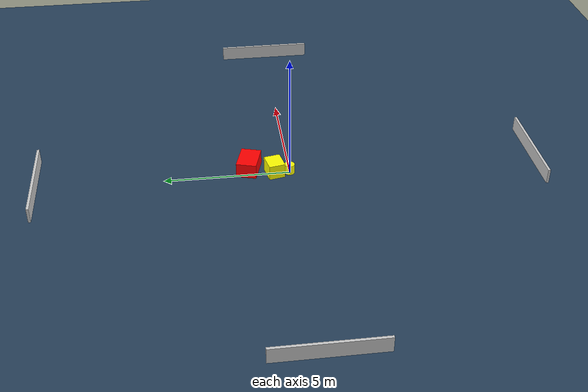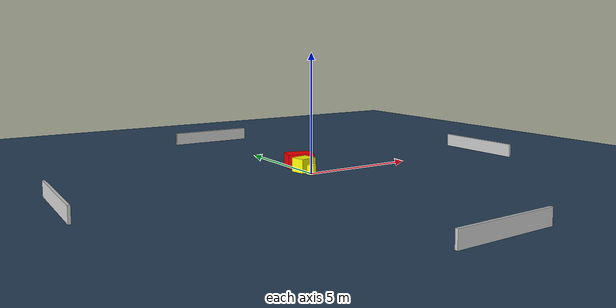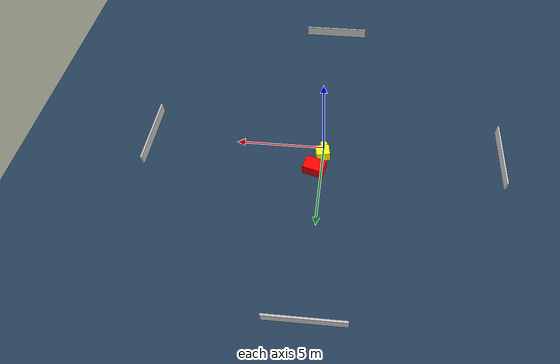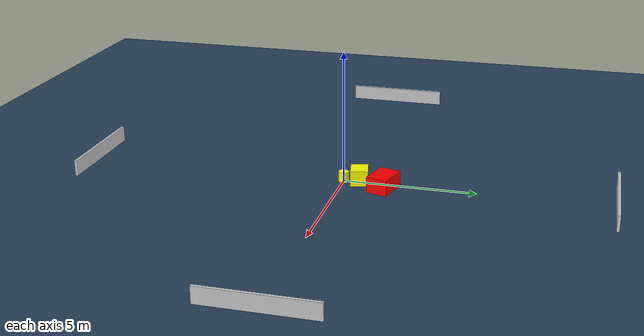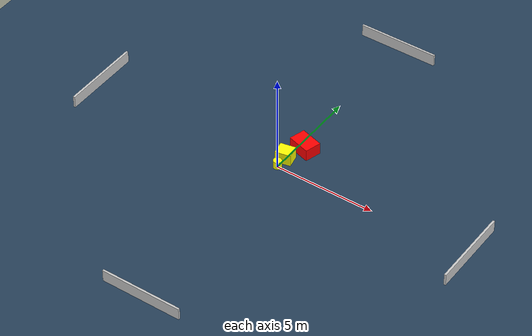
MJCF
<?xml version="1.0" ?>
<mujoco model="generated_environment">
  <option timestep="0.01" integrator="RK4" cone="elliptic"/>
  <default>
    <geom density="1"/>
  </default>
  <asset>
    <texture builtin="gradient" height="3072" name="skybox" rgb1="0.3 0.5 0.7" rgb2="0 0 0" type="skybox" width="512"/>
    <texture builtin="checker" height="300" name="groundplane" rgb1="0.2 0.3 0.4" rgb2="0.1 0.2 0.3" type="2d" width="300"/>
    <material name="groundplane" reflectance="0.2" texrepeat="5 5" texture="groundplane"/>
  </asset>
  <worldbody>
    <light dir="0 0 -1" directional="true" pos="0 0 1.5"/>
    <geom condim="3" friction="0.5 0.005 0.001" material="groundplane" name="floor" pos="0 0 0" size="0 0 0.05" type="plane"/>
    <body name="walls">
      <geom name="wall_1" condim="4" pos="-10.0 0.0 0.3" rgba="0.800000011920929 0.800000011920929 0.800000011920929 1.0" size="0.05 2.0 0.3" type="box"/>
      <geom name="wall_2" condim="4" pos="10.0 0.0 0.3" rgba="0.800000011920929 0.800000011920929 0.800000011920929 1.0" size="0.05 2.0 0.3" type="box"/>
      <geom name="wall_3" condim="4" pos="0.0 -10.0 0.3" rgba="0.800000011920929 0.800000011920929 0.800000011920929 1.0" size="2.0 0.05 0.3" type="box"/>
      <geom name="wall_4" condim="4" pos="0.0 10.0 0.3" rgba="0.800000011920929 0.800000011920929 0.800000011920929 1.0" size="2.0 0.05 0.3" type="box"/>
    </body>
    <body name="robot">
      <joint name="joint_x" type="slide" pos="0 0 0" axis="1 0 0"/>
      <joint name="joint_y" type="slide" pos="0 0 0" axis="0 1 0"/>
      <geom name="robot" type="cylinder" pos="0.0 0.0 0.2" size="0.2 0.2 0.0" mass="5.0" friction="1.0 0.005 0.0001" condim="4" rgba="1.0 1.0 0.0 1.0"/>
    </body>
    <body name="obstacle_1_movable">
      <geom name="obstacle_1_movable" condim="4" pos="0.015213174422764274 0.605107725242509 0.3" euler="0 0 191.40162289410864" friction="0.0 0.005 0.001" rgba="1.0 1.0 0.0 1.0" size="0.37965589678071965 0.32593710777034224 0.3" type="box" mass="0.1"/>
      <joint type="free"/>
    </body>
    <body name="obstacle_2_static">
      <geom name="obstacle_2_static" condim="4" pos="0.3915334674455748 1.6002937300508389 0.3" euler="0 0 163.83877906608305" friction="0.0 0.005 0.001" rgba="1.0 0.0 0.0 1.0" size="0.5733294420576591 0.4032784700207832 0.3" type="box"/>
    </body>
  </worldbody>
  <actuator>
    <motor name="actuator_x" joint="joint_x" gear="1" ctrlrange="-1 1"/>
    <motor name="actuator_y" joint="joint_y" gear="1" ctrlrange="-1 1"/>
  </actuator>
</mujoco>
